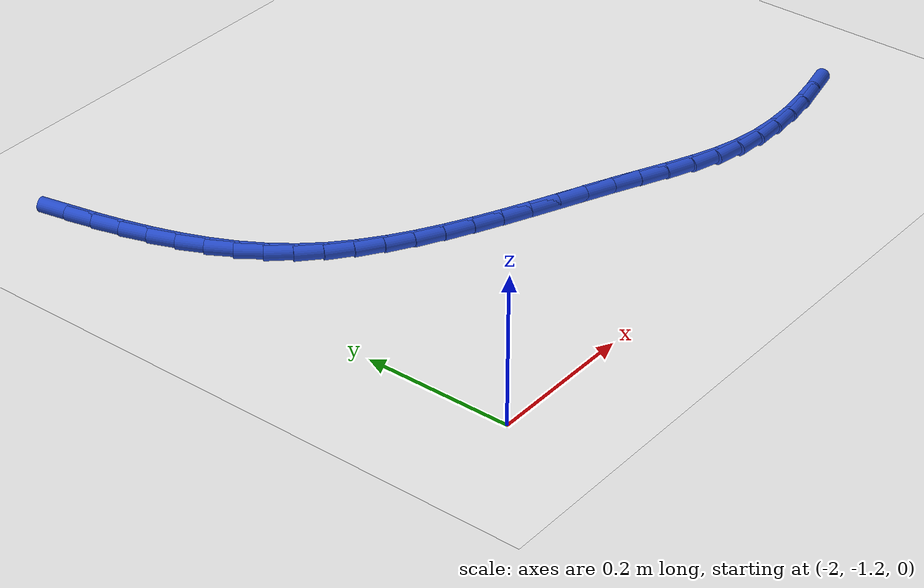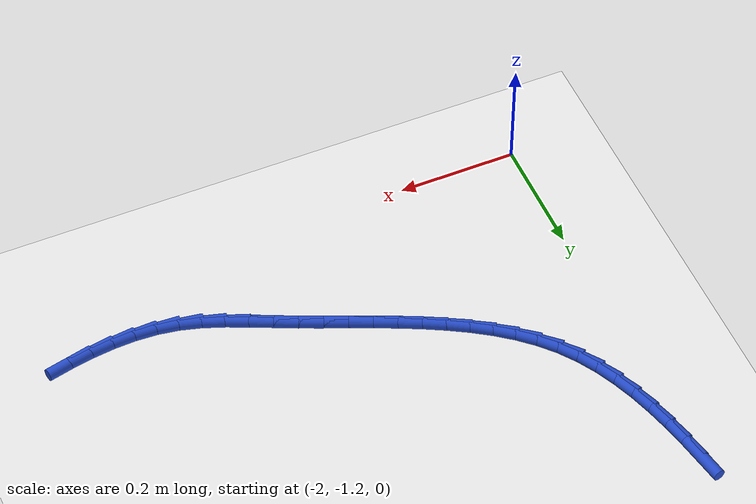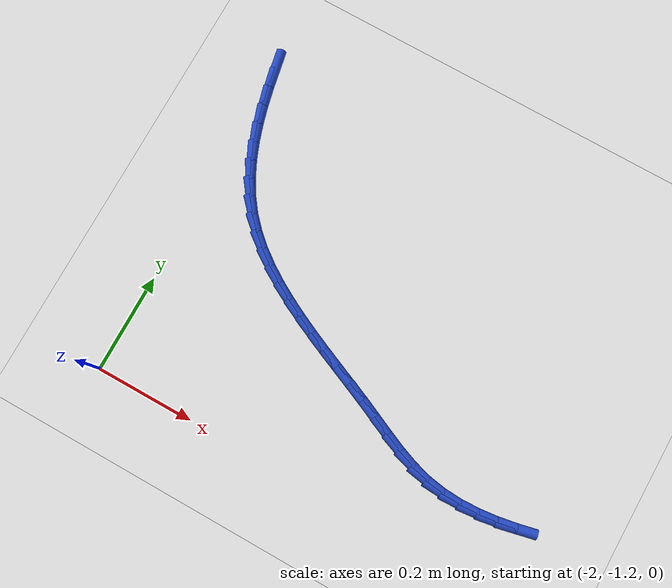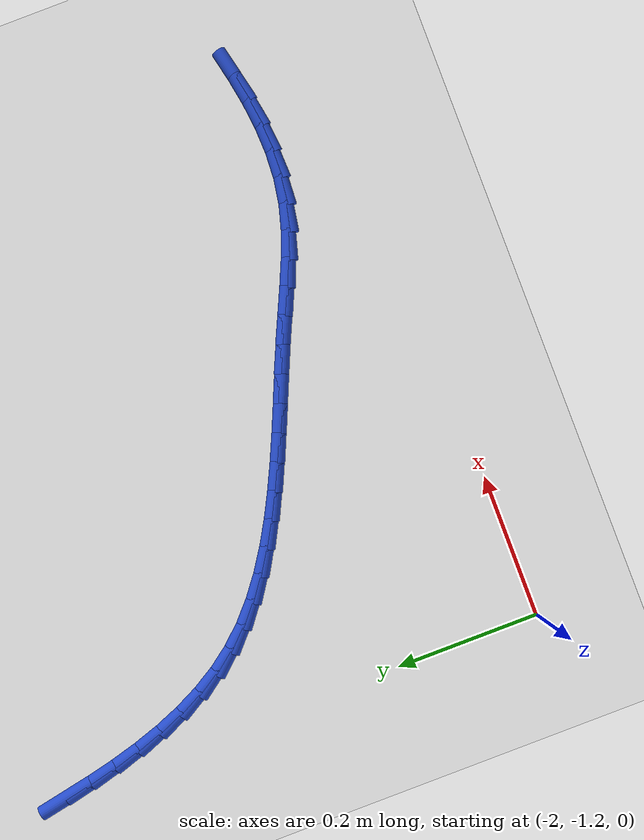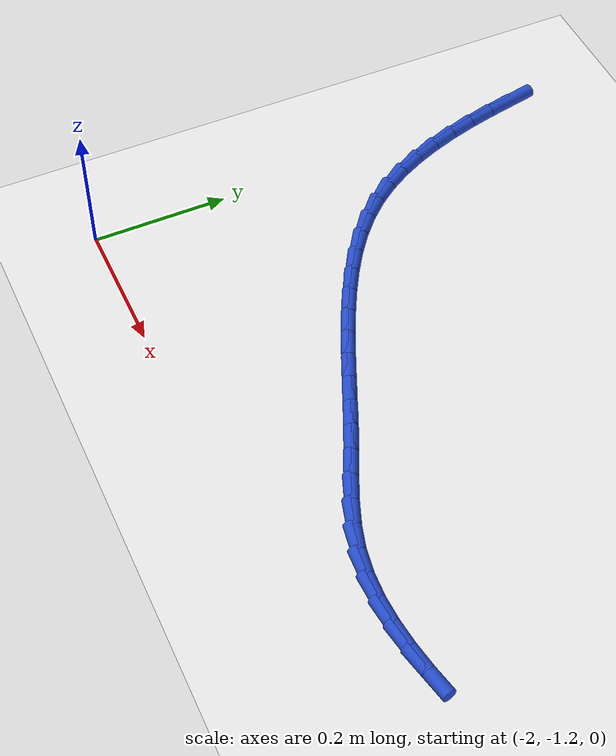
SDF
<sdf version="1.6">
 <world name="default">
  <model name="ground_plane">
   <static>1</static>
   <link name="link">
    <collision name="collision">
     <geometry><plane><normal>0 0 1</normal><size>100 100</size></plane></geometry>
     <surface><friction><ode><mu>100</mu><mu2>50</mu2></ode></friction></surface>
    </collision>
    <visual name="visual">
     <cast_shadows>0</cast_shadows>
     <geometry><plane><normal>0 0 1</normal><size>100 100</size></plane></geometry>
     <material>
      <script><uri>file://media/materials/scripts/gazebo.material</uri><name>Gazebo/WhiteGlow</name></script>
     </material>
    </visual>
   </link>
  </model>
  <model name="line">
   <link name="link_105">
    <pose>-2.003981221558608 -0.5203301263767748 0.01 0 1.57 -1.3740370824486123</pose>
    <collision name="collision">
     <geometry><cylinder><radius>0.01</radius><length>0.08</length></cylinder></geometry>
    </collision>
    <visual name="visual">
     <material>
      <script><name>Gazebo/Blue</name><uri>file://media/materials/scripts/gazebo.material</uri></script>
     </material>
     <geometry><cylinder><radius>0.01</radius><length>0.08</length></cylinder></geometry>
    </visual>
   </link>
   <link name="link_106">
    <pose>-1.9962308070191077 -0.5592108327819497 0.01 0 1.57 -1.3422764441306183</pose>
    <collision name="collision">
     <geometry><cylinder><radius>0.01</radius><length>0.08</length></cylinder></geometry>
    </collision>
    <visual name="visual">
     <material>
      <script><name>Gazebo/Blue</name><uri>file://media/materials/scripts/gazebo.material</uri></script>
     </material>
     <geometry><cylinder><radius>0.01</radius><length>0.08</length></cylinder></geometry>
    </visual>
   </link>
   <link name="link_107">
    <pose>-1.9873372220425247 -0.5974492196713598 0.01 0 1.57 -1.30149861370294</pose>
    <collision name="collision">
     <geometry><cylinder><radius>0.01</radius><length>0.08</length></cylinder></geometry>
    </collision>
    <visual name="visual">
     <material>
      <script><name>Gazebo/Blue</name><uri>file://media/materials/scripts/gazebo.material</uri></script>
     </material>
     <geometry><cylinder><radius>0.01</radius><length>0.08</length></cylinder></geometry>
    </visual>
   </link>
   <link name="link_108">
    <pose>-1.977035437424811 -0.6347742281905209 0.01 0 1.57 -1.2508359429474907</pose>
    <collision name="collision">
     <geometry><cylinder><radius>0.01</radius><length>0.08</length></cylinder></geometry>
    </collision>
    <visual name="visual">
     <material>
      <script><name>Gazebo/Blue</name><uri>file://media/materials/scripts/gazebo.material</uri></script>
     </material>
     <geometry><cylinder><radius>0.01</radius><length>0.08</length></cylinder></geometry>
    </visual>
   </link>
   <link name="link_109">
    <pose>-1.9650604239619205 -0.6709147994849498 0.01 0 1.57 -1.189315017026701</pose>
    <collision name="collision">
     <geometry><cylinder><radius>0.01</radius><length>0.08</length></cylinder></geometry>
    </collision>
    <visual name="visual">
     <material>
      <script><name>Gazebo/Blue</name><uri>file://media/materials/scripts/gazebo.material</uri></script>
     </material>
     <geometry><cylinder><radius>0.01</radius><length>0.08</length></cylinder></geometry>
    </visual>
   </link>
   <link name="link_110">
    <pose>-1.9511471524498072 -0.7055998747001611 0.01 0 1.57 -1.1159912390308089</pose>
    <collision name="collision">
     <geometry><cylinder><radius>0.01</radius><length>0.08</length></cylinder></geometry>
    </collision>
    <visual name="visual">
     <material>
      <script><name>Gazebo/Blue</name><uri>file://media/materials/scripts/gazebo.material</uri></script>
     </material>
     <geometry><cylinder><radius>0.01</radius><length>0.08</length></cylinder></geometry>
    </visual>
   </link>
   <link name="link_111">
    <pose>-1.9350305936844232 -0.7385583949816711 0.01 0 1.57 -1.030178988380647</pose>
    <collision name="collision">
     <geometry><cylinder><radius>0.01</radius><length>0.08</length></cylinder></geometry>
    </collision>
    <visual name="visual">
     <material>
      <script><name>Gazebo/Blue</name><uri>file://media/materials/scripts/gazebo.material</uri></script>
     </material>
     <geometry><cylinder><radius>0.01</radius><length>0.08</length></cylinder></geometry>
    </visual>
   </link>
   <link name="link_112">
    <pose>-1.9164457184617238 -0.7695193014749965 0.01 0 1.57 -0.9318020281160496</pose>
    <collision name="collision">
     <geometry><cylinder><radius>0.01</radius><length>0.08</length></cylinder></geometry>
    </collision>
    <visual name="visual">
     <material>
      <script><name>Gazebo/Blue</name><uri>file://media/materials/scripts/gazebo.material</uri></script>
     </material>
     <geometry><cylinder><radius>0.01</radius><length>0.08</length></cylinder></geometry>
    </visual>
   </link>
   <link name="link_113">
    <pose>-1.8951277435496432 -0.7982117611974584 0.01 0 1.57 -0.8271094011224083</pose>
    <collision name="collision">
     <geometry><cylinder><radius>0.01</radius><length>0.08</length></cylinder></geometry>
    </collision>
    <visual name="visual">
     <material>
      <script><name>Gazebo/Blue</name><uri>file://media/materials/scripts/gazebo.material</uri></script>
     </material>
     <geometry><cylinder><radius>0.01</radius><length>0.08</length></cylinder></geometry>
    </visual>
   </link>
   <link name="link_114">
    <pose>-1.8709518797613696 -0.8244934952704042 0.01 0 1.57 -0.732105167405104</pose>
    <collision name="collision">
     <geometry><cylinder><radius>0.01</radius><length>0.08</length></cylinder></geometry>
    </collision>
    <visual name="visual">
     <material>
      <script><name>Gazebo/Blue</name><uri>file://media/materials/scripts/gazebo.material</uri></script>
     </material>
     <geometry><cylinder><radius>0.01</radius><length>0.08</length></cylinder></geometry>
    </visual>
   </link>
   <link name="link_115">
    <pose>-1.8441670763494065 -0.8485654223427613 0.01 0 1.57 -0.6502308630536964</pose>
    <collision name="collision">
     <geometry><cylinder><radius>0.01</radius><length>0.08</length></cylinder></geometry>
    </collision>
    <visual name="visual">
     <material>
      <script><name>Gazebo/Blue</name><uri>file://media/materials/scripts/gazebo.material</uri></script>
     </material>
     <geometry><cylinder><radius>0.01</radius><length>0.08</length></cylinder></geometry>
    </visual>
   </link>
   <link name="link_116">
    <pose>-1.8150839798027156 -0.8706851165657598 0.01 0 1.57 -0.5815401771580039</pose>
    <collision name="collision">
     <geometry><cylinder><radius>0.01</radius><length>0.08</length></cylinder></geometry>
    </collision>
    <visual name="visual">
     <material>
      <script><name>Gazebo/Blue</name><uri>file://media/materials/scripts/gazebo.material</uri></script>
     </material>
     <geometry><cylinder><radius>0.01</radius><length>0.08</length></cylinder></geometry>
    </visual>
   </link>
   <link name="link_117">
    <pose>-1.784013236610254 -0.8911101520906302 0.01 0 1.57 -0.5254526220353993</pose>
    <collision name="collision">
     <geometry><cylinder><radius>0.01</radius><length>0.08</length></cylinder></geometry>
    </collision>
    <visual name="visual">
     <material>
      <script><name>Gazebo/Blue</name><uri>file://media/materials/scripts/gazebo.material</uri></script>
     </material>
     <geometry><cylinder><radius>0.01</radius><length>0.08</length></cylinder></geometry>
    </visual>
   </link>
   <link name="link_118">
    <pose>-1.7512654932609806 -0.9100981030686028 0.01 0 1.57 -0.48111262671764476</pose>
    <collision name="collision">
     <geometry><cylinder><radius>0.01</radius><length>0.08</length></cylinder></geometry>
    </collision>
    <visual name="visual">
     <material>
      <script><name>Gazebo/Blue</name><uri>file://media/materials/scripts/gazebo.material</uri></script>
     </material>
     <geometry><cylinder><radius>0.01</radius><length>0.08</length></cylinder></geometry>
    </visual>
   </link>
   <link name="link_119">
    <pose>-1.7171513962438547 -0.927906543650908 0.01 0 1.57 -0.4476354757018459</pose>
    <collision name="collision">
     <geometry><cylinder><radius>0.01</radius><length>0.08</length></cylinder></geometry>
    </collision>
    <visual name="visual">
     <material>
      <script><name>Gazebo/Blue</name><uri>file://media/materials/scripts/gazebo.material</uri></script>
     </material>
     <geometry><cylinder><radius>0.01</radius><length>0.08</length></cylinder></geometry>
    </visual>
   </link>
   <link name="link_120">
    <pose>-1.681981592047834 -0.9447930479887763 0.01 0 1.57 -0.424252821097757</pose>
    <collision name="collision">
     <geometry><cylinder><radius>0.01</radius><length>0.08</length></cylinder></geometry>
    </collision>
    <visual name="visual">
     <material>
      <script><name>Gazebo/Blue</name><uri>file://media/materials/scripts/gazebo.material</uri></script>
     </material>
     <geometry><cylinder><radius>0.01</radius><length>0.08</length></cylinder></geometry>
    </visual>
   </link>
   <link name="link_121">
    <pose>-1.6460667271618794 -0.9610151902334376 0.01 0 1.57 -0.41038922094874863</pose>
    <collision name="collision">
     <geometry><cylinder><radius>0.01</radius><length>0.08</length></cylinder></geometry>
    </collision>
    <visual name="visual">
     <material>
      <script><name>Gazebo/Blue</name><uri>file://media/materials/scripts/gazebo.material</uri></script>
     </material>
     <geometry><cylinder><radius>0.01</radius><length>0.08</length></cylinder></geometry>
    </visual>
   </link>
   <link name="link_122">
    <pose>-1.6097174480749494 -0.9768305445361227 0.01 0 1.57 -0.4056983865834513</pose>
    <collision name="collision">
     <geometry><cylinder><radius>0.01</radius><length>0.08</length></cylinder></geometry>
    </collision>
    <visual name="visual">
     <material>
      <script><name>Gazebo/Blue</name><uri>file://media/materials/scripts/gazebo.material</uri></script>
     </material>
     <geometry><cylinder><radius>0.01</radius><length>0.08</length></cylinder></geometry>
    </visual>
   </link>
   <link name="link_123">
    <pose>-1.5732444012760016 -0.9924966850480615 0.01 0 1.57 -0.4100788079907987</pose>
    <collision name="collision">
     <geometry><cylinder><radius>0.01</radius><length>0.08</length></cylinder></geometry>
    </collision>
    <visual name="visual">
     <material>
      <script><name>Gazebo/Blue</name><uri>file://media/materials/scripts/gazebo.material</uri></script>
     </material>
     <geometry><cylinder><radius>0.01</radius><length>0.08</length></cylinder></geometry>
    </visual>
   </link>
   <link name="link_124">
    <pose>-1.5369582332539957 -1.0082711859204851 0.01 0 1.57 -0.42352882082982024</pose>
    <collision name="collision">
     <geometry><cylinder><radius>0.01</radius><length>0.08</length></cylinder></geometry>
    </collision>
    <visual name="visual">
     <material>
      <script><name>Gazebo/Blue</name><uri>file://media/materials/scripts/gazebo.material</uri></script>
     </material>
     <geometry><cylinder><radius>0.01</radius><length>0.08</length></cylinder></geometry>
    </visual>
   </link>
   <link name="link_125">
    <pose>-1.5011671329136251 -1.024406236558928 0.01 0 1.57 -0.4329900986601242</pose>
    <collision name="collision">
     <geometry><cylinder><radius>0.01</radius><length>0.08</length></cylinder></geometry>
    </collision>
    <visual name="visual">
     <material>
      <script><name>Gazebo/Blue</name><uri>file://media/materials/scripts/gazebo.material</uri></script>
     </material>
     <geometry><cylinder><radius>0.01</radius><length>0.08</length></cylinder></geometry>
    </visual>
   </link>
   <link name="link_126">
    <pose>-1.4659626421719958 -1.0406793370774634 0.01 0 1.57 -0.4142440083113537</pose>
    <collision name="collision">
     <geometry><cylinder><radius>0.01</radius><length>0.08</length></cylinder></geometry>
    </collision>
    <visual name="visual">
     <material>
      <script><name>Gazebo/Blue</name><uri>file://media/materials/scripts/gazebo.material</uri></script>
     </material>
     <geometry><cylinder><radius>0.01</radius><length>0.08</length></cylinder></geometry>
    </visual>
   </link>
   <link name="link_127">
    <pose>-1.4310531842679384 -1.0560285467284916 0.01 0 1.57 -0.3631058786709661</pose>
    <collision name="collision">
     <geometry><cylinder><radius>0.01</radius><length>0.08</length></cylinder></geometry>
    </collision>
    <visual name="visual">
     <material>
      <script><name>Gazebo/Blue</name><uri>file://media/materials/scripts/gazebo.material</uri></script>
     </material>
     <geometry><cylinder><radius>0.01</radius><length>0.08</length></cylinder></geometry>
    </visual>
   </link>
   <link name="link_128">
    <pose>-1.3961079994917922 -1.0693060720772252 0.01 0 1.57 -0.27748779551382485</pose>
    <collision name="collision">
     <geometry><cylinder><radius>0.01</radius><length>0.08</length></cylinder></geometry>
    </collision>
    <visual name="visual">
     <material>
      <script><name>Gazebo/Blue</name><uri>file://media/materials/scripts/gazebo.material</uri></script>
     </material>
     <geometry><cylinder><radius>0.01</radius><length>0.08</length></cylinder></geometry>
    </visual>
   </link>
   <link name="link_129">
    <pose>-1.3607963281361954 -1.079364119697607 0.01 0 1.57 -0.16453799445522496</pose>
    <collision name="collision">
     <geometry><cylinder><radius>0.01</radius><length>0.08</length></cylinder></geometry>
    </collision>
    <visual name="visual">
     <material>
      <script><name>Gazebo/Blue</name><uri>file://media/materials/scripts/gazebo.material</uri></script>
     </material>
     <geometry><cylinder><radius>0.01</radius><length>0.08</length></cylinder></geometry>
    </visual>
   </link>
   <link name="link_130">
    <pose>-1.324860098515279 -1.0853309383494893 0.01 0 1.57 -0.05735552575970793</pose>
    <collision name="collision">
     <geometry><cylinder><radius>0.01</radius><length>0.08</length></cylinder></geometry>
    </collision>
    <visual name="visual">
     <material>
      <script><name>Gazebo/Blue</name><uri>file://media/materials/scripts/gazebo.material</uri></script>
     </material>
     <geometry><cylinder><radius>0.01</radius><length>0.08</length></cylinder></geometry>
    </visual>
   </link>
   <link name="link_131">
    <pose>-1.2883292367247936 -1.0874284857085112 0.01 0 1.57 0.03452928628432661</pose>
    <collision name="collision">
     <geometry><cylinder><radius>0.01</radius><length>0.08</length></cylinder></geometry>
    </collision>
    <visual name="visual">
     <material>
      <script><name>Gazebo/Blue</name><uri>file://media/materials/scripts/gazebo.material</uri></script>
     </material>
     <geometry><cylinder><radius>0.01</radius><length>0.08</length></cylinder></geometry>
    </visual>
   </link>
   <link name="link_132">
    <pose>-1.2513049862402819 -1.0861495564466468 0.01 0 1.57 0.11079539597028687</pose>
    <collision name="collision">
     <geometry><cylinder><radius>0.01</radius><length>0.08</length></cylinder></geometry>
    </collision>
    <visual name="visual">
     <material>
      <script><name>Gazebo/Blue</name><uri>file://media/materials/scripts/gazebo.material</uri></script>
     </material>
     <geometry><cylinder><radius>0.01</radius><length>0.08</length></cylinder></geometry>
    </visual>
   </link>
   <link name="link_133">
    <pose>-1.2138885905372838 -1.0819869452358717 0.01 0 1.57 0.17208032031687223</pose>
    <collision name="collision">
     <geometry><cylinder><radius>0.01</radius><length>0.08</length></cylinder></geometry>
    </collision>
    <visual name="visual">
     <material>
      <script><name>Gazebo/Blue</name><uri>file://media/materials/scripts/gazebo.material</uri></script>
     </material>
     <geometry><cylinder><radius>0.01</radius><length>0.08</length></cylinder></geometry>
    </visual>
   </link>
   <link name="link_134">
    <pose>-1.1761812930913402 -1.0754334467481605 0.01 0 1.57 0.21942432757377883</pose>
    <collision name="collision">
     <geometry><cylinder><radius>0.01</radius><length>0.08</length></cylinder></geometry>
    </collision>
    <visual name="visual">
     <material>
      <script><name>Gazebo/Blue</name><uri>file://media/materials/scripts/gazebo.material</uri></script>
     </material>
     <geometry><cylinder><radius>0.01</radius><length>0.08</length></cylinder></geometry>
    </visual>
   </link>
  </model>
 </world>
</sdf>
